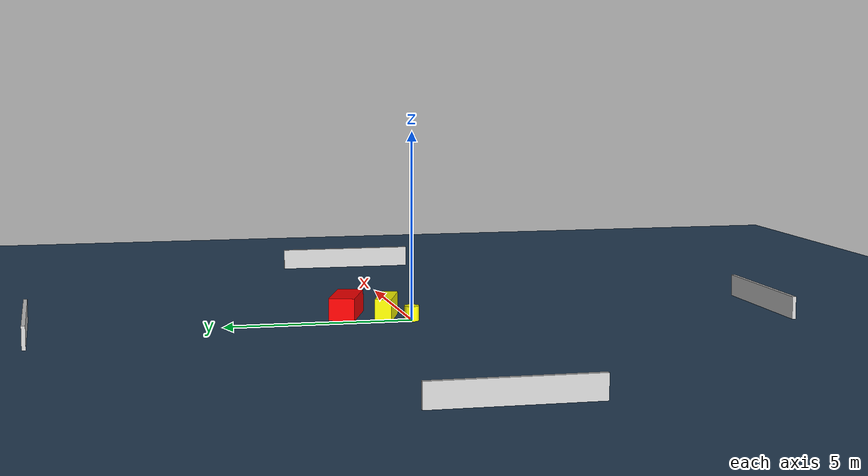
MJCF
<?xml version="1.0" ?>
<mujoco model="generated_environment">
  <option timestep="0.01" integrator="RK4" cone="elliptic"/>
  <default>
    <geom density="1"/>
  </default>
  <asset>
    <texture builtin="gradient" height="3072" name="skybox" rgb1="0.3 0.5 0.7" rgb2="0 0 0" type="skybox" width="512"/>
    <texture builtin="checker" height="300" name="groundplane" rgb1="0.2 0.3 0.4" rgb2="0.1 0.2 0.3" type="2d" width="300"/>
    <material name="groundplane" reflectance="0.2" texrepeat="5 5" texture="groundplane"/>
  </asset>
  <worldbody>
    <light dir="0 0 -1" directional="true" pos="0 0 1.5"/>
    <geom condim="3" friction="0.5 0.005 0.001" material="groundplane" name="floor" pos="0 0 0" size="0 0 0.05" type="plane"/>
    <body name="walls">
      <geom name="wall_1" condim="4" pos="-10.0 0.0 0.3" rgba="0.800000011920929 0.800000011920929 0.800000011920929 1.0" size="0.05 2.0 0.3" type="box"/>
      <geom name="wall_2" condim="4" pos="10.0 0.0 0.3" rgba="0.800000011920929 0.800000011920929 0.800000011920929 1.0" size="0.05 2.0 0.3" type="box"/>
      <geom name="wall_3" condim="4" pos="0.0 -10.0 0.3" rgba="0.800000011920929 0.800000011920929 0.800000011920929 1.0" size="2.0 0.05 0.3" type="box"/>
      <geom name="wall_4" condim="4" pos="0.0 10.0 0.3" rgba="0.800000011920929 0.800000011920929 0.800000011920929 1.0" size="2.0 0.05 0.3" type="box"/>
    </body>
    <body name="robot">
      <joint name="joint_x" type="slide" pos="0 0 0" axis="1 0 0"/>
      <joint name="joint_y" type="slide" pos="0 0 0" axis="0 1 0"/>
      <geom name="robot" type="cylinder" pos="0.0 0.0 0.2" size="0.2 0.2 0.0" mass="5.0" friction="1.0 0.005 0.0001" condim="4" rgba="1.0 1.0 0.0 1.0"/>
    </body>
    <body name="obstacle_1_movable">
      <geom name="obstacle_1_movable" condim="4" pos="0.556493788658899 0.5686647306908702 0.3" euler="0 0 250.90569500456758" friction="0.0 0.005 0.001" rgba="1.0 1.0 0.0 1.0" size="0.2231083134140659 0.6806104935031869 0.3" type="box" mass="0.1"/>
      <joint type="free"/>
    </body>
    <body name="obstacle_2_static">
      <geom name="obstacle_2_static" condim="4" pos="1.0352477675734237 1.580340487845848 0.3" euler="0 0 251.0239960261309" friction="0.0 0.005 0.001" rgba="1.0 0.0 0.0 1.0" size="0.3487700263191723 0.7997962447252662 0.3" type="box"/>
    </body>
  </worldbody>
  <actuator>
    <motor name="actuator_x" joint="joint_x" gear="1" ctrlrange="-1 1"/>
    <motor name="actuator_y" joint="joint_y" gear="1" ctrlrange="-1 1"/>
  </actuator>
</mujoco>
